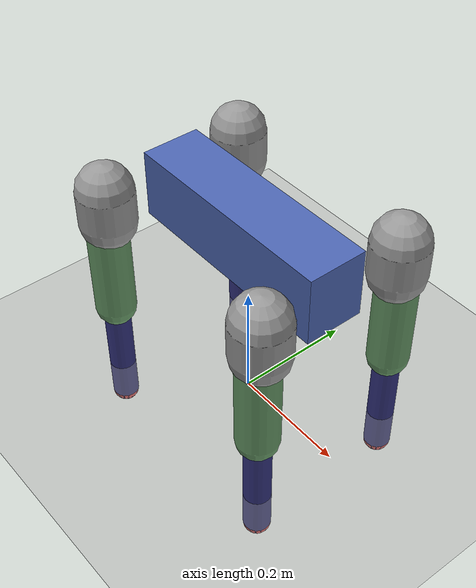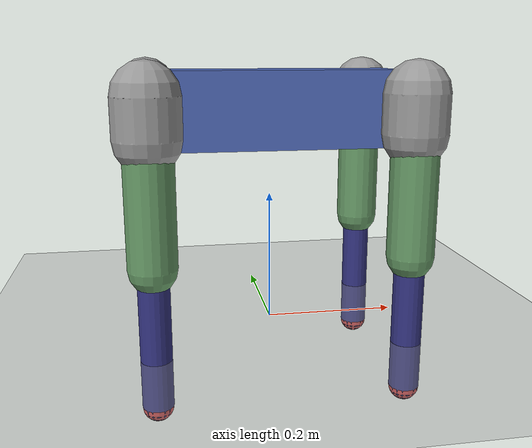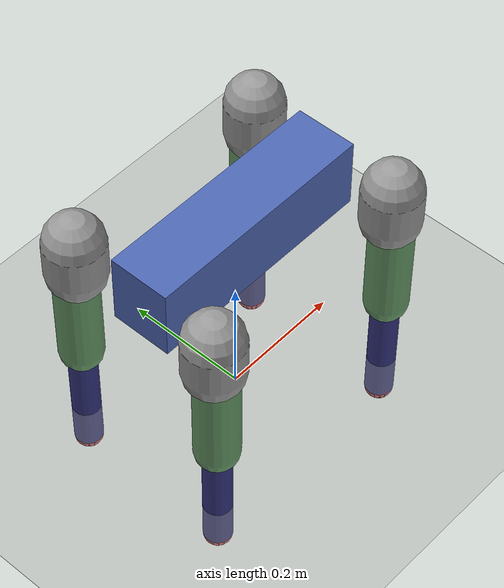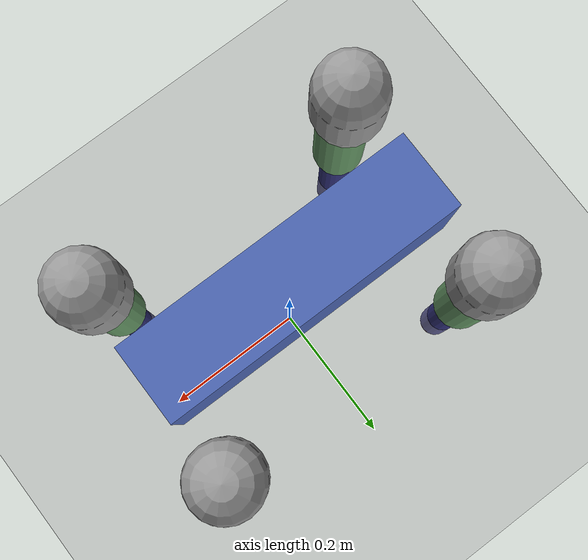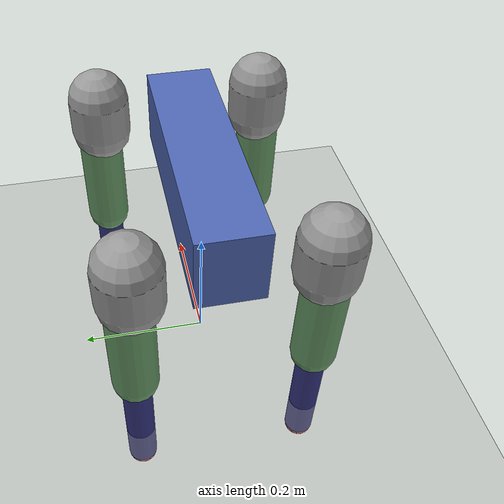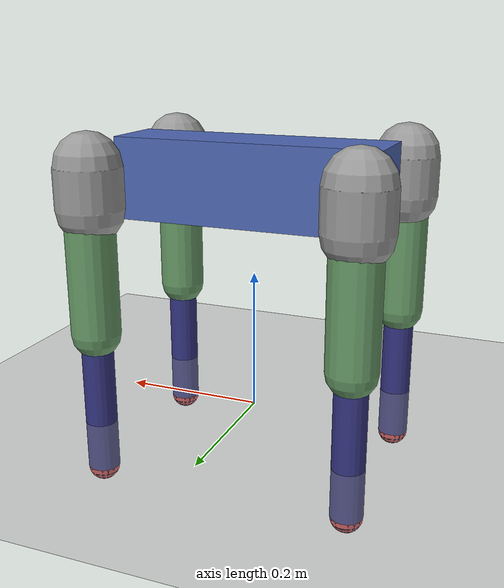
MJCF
<mujoco model="quadruped">

  <!-- Global simulation options -->
  <option timestep="0.002" gravity="0 0 -9.81" iterations="50" solver="Newton"/>

  <!-- Compiler settings -->
  <compiler angle="radian" autolimits="true"/>

  <!-- Default geometry and joint properties -->
  <default>
    <joint damping="0.01" armature="0.01" limited="true"/>
    <geom condim="3" friction="0.8 0.02 0.01" rgba="0.6 0.6 0.6 1"/>
    <motor ctrllimited="true" ctrlrange="-33.5 33.5" gear="1"/>
  </default>

  <!-- Ground plane + sky -->
  <asset>
    <texture type="skybox" builtin="gradient" rgb1="0.3 0.5 0.8" rgb2="0 0 0" width="512" height="512"/>
    <texture name="grid" type="2d" builtin="checker" rgb1=".1 .2 .3" rgb2=".2 .3 .4" width="300" height="300" mark="none"/>
    <material name="grid" texture="grid" texrepeat="1 1" texuniform="true" reflectance=".2"/>
  </asset>

  <!-- World -->
  <worldbody>
    <light directional="true" diffuse=".8 .8 .8" specular=".2 .2 .2" pos="0 0 4" dir="0 0 -1"/>
    <geom name="floor" type="plane" size="10 10 0.1" pos="0 0 0" material="grid"/>

    <!-- BASE BODY (trunk)                                                   -->
    <body name="base" pos="0 0 0.33">

      <!-- 6-DOF freejoint lets the body float freely (training in free space) -->
      <freejoint name="root"/>

      <!-- Trunk mass ~4.71 kg, dimensions approximate A1 -->
      <inertial pos="0 0 0" mass="4.71"
                diaginertia="0.0158533 0.0377999 0.0456542"/>
      <geom name="trunk" type="box" size="0.1875 0.049 0.057" rgba="0.3 0.4 0.7 1"/>

      <!-- IMU site (where we read angular velocity and orientation) -->
      <site name="imu" pos="0 0 0"/>

      <!-- FRONT RIGHT LEG (FR)                                           -->
      <body name="FR_hip" pos="0.1805 -0.047 0">
        <joint name="FR_hip_joint" type="hinge" axis="1 0 0" range="-0.916 0.916"/>
        <inertial pos="0 0 0" mass="0.696" diaginertia="0.000871 0.00173 0.00173"/>
        <geom type="capsule" size="0.046 0.028" pos="0 -0.08 0" quat="1 0 0 0"/>

        <body name="FR_thigh" pos="0 -0.0838 0">
          <joint name="FR_thigh_joint" type="hinge" axis="0 1 0" range="-1.745 4.189"/>
          <inertial pos="0 0 -0.1" mass="1.013" diaginertia="0.00550 0.00550 0.000589"/>
          <geom type="capsule" size="0.034 0.1" pos="0 0 -0.1" quat="1 0 0 0" rgba="0.4 0.6 0.4 1"/>

          <body name="FR_calf" pos="0 0 -0.2">
            <joint name="FR_calf_joint" type="hinge" axis="0 1 0" range="-2.775 -0.646"/>
            <inertial pos="0 0 -0.1" mass="0.226" diaginertia="0.000215 0.000215 0.0000135"/>
            <geom type="capsule" size="0.022 0.1" pos="0 0 -0.1" rgba="0.2 0.2 0.5 1"/>
            <!-- Foot contact sphere -->
            <geom name="FR_foot" type="sphere" size="0.022" pos="0 0 -0.2"
                  rgba="0.9 0.3 0.3 1" condim="6"/>
          </body>
        </body>
      </body>

      <!-- FRONT LEFT LEG (FL)                                            -->
      <body name="FL_hip" pos="0.1805 0.047 0">
        <joint name="FL_hip_joint" type="hinge" axis="1 0 0" range="-0.916 0.916"/>
        <inertial pos="0 0 0" mass="0.696" diaginertia="0.000871 0.00173 0.00173"/>
        <geom type="capsule" size="0.046 0.028" pos="0 0.08 0" quat="1 0 0 0"/>

        <body name="FL_thigh" pos="0 0.0838 0">
          <joint name="FL_thigh_joint" type="hinge" axis="0 1 0" range="-1.745 4.189"/>
          <inertial pos="0 0 -0.1" mass="1.013" diaginertia="0.00550 0.00550 0.000589"/>
          <geom type="capsule" size="0.034 0.1" pos="0 0 -0.1" quat="1 0 0 0" rgba="0.4 0.6 0.4 1"/>

          <body name="FL_calf" pos="0 0 -0.2">
            <joint name="FL_calf_joint" type="hinge" axis="0 1 0" range="-2.775 -0.646"/>
            <inertial pos="0 0 -0.1" mass="0.226" diaginertia="0.000215 0.000215 0.0000135"/>
            <geom type="capsule" size="0.022 0.1" pos="0 0 -0.1" rgba="0.2 0.2 0.5 1"/>
            <geom name="FL_foot" type="sphere" size="0.022" pos="0 0 -0.2"
                  rgba="0.9 0.3 0.3 1" condim="6"/>
          </body>
        </body>
      </body>

      <!-- REAR RIGHT LEG (RR)                                            -->
      <body name="RR_hip" pos="-0.1805 -0.047 0">
        <joint name="RR_hip_joint" type="hinge" axis="1 0 0" range="-0.916 0.916"/>
        <inertial pos="0 0 0" mass="0.696" diaginertia="0.000871 0.00173 0.00173"/>
        <geom type="capsule" size="0.046 0.028" pos="0 -0.08 0" quat="1 0 0 0"/>

        <body name="RR_thigh" pos="0 -0.0838 0">
          <joint name="RR_thigh_joint" type="hinge" axis="0 1 0" range="-1.745 4.189"/>
          <inertial pos="0 0 -0.1" mass="1.013" diaginertia="0.00550 0.00550 0.000589"/>
          <geom type="capsule" size="0.034 0.1" pos="0 0 -0.1" quat="1 0 0 0" rgba="0.4 0.6 0.4 1"/>

          <body name="RR_calf" pos="0 0 -0.2">
            <joint name="RR_calf_joint" type="hinge" axis="0 1 0" range="-2.775 -0.646"/>
            <inertial pos="0 0 -0.1" mass="0.226" diaginertia="0.000215 0.000215 0.0000135"/>
            <geom type="capsule" size="0.022 0.1" pos="0 0 -0.1" rgba="0.2 0.2 0.5 1"/>
            <geom name="RR_foot" type="sphere" size="0.022" pos="0 0 -0.2"
                  rgba="0.9 0.3 0.3 1" condim="6"/>
          </body>
        </body>
      </body>

      <!-- REAR LEFT LEG (RL)                                             -->
      <body name="RL_hip" pos="-0.1805 0.047 0">
        <joint name="RL_hip_joint" type="hinge" axis="1 0 0" range="-0.916 0.916"/>
        <inertial pos="0 0 0" mass="0.696" diaginertia="0.000871 0.00173 0.00173"/>
        <geom type="capsule" size="0.046 0.028" pos="0 0.08 0" quat="1 0 0 0"/>

        <body name="RL_thigh" pos="0 0.0838 0">
          <joint name="RL_thigh_joint" type="hinge" axis="0 1 0" range="-1.745 4.189"/>
          <inertial pos="0 0 -0.1" mass="1.013" diaginertia="0.00550 0.00550 0.000589"/>
          <geom type="capsule" size="0.034 0.1" pos="0 0 -0.1" quat="1 0 0 0" rgba="0.4 0.6 0.4 1"/>

          <body name="RL_calf" pos="0 0 -0.2">
            <joint name="RL_calf_joint" type="hinge" axis="0 1 0" range="-2.775 -0.646"/>
            <inertial pos="0 0 -0.1" mass="0.226" diaginertia="0.000215 0.000215 0.0000135"/>
            <geom type="capsule" size="0.022 0.1" pos="0 0 -0.1" rgba="0.2 0.2 0.5 1"/>
            <geom name="RL_foot" type="sphere" size="0.022" pos="0 0 -0.2"
                  rgba="0.9 0.3 0.3 1" condim="6"/>
          </body>
        </body>
      </body>

    </body> <!-- end base -->
  </worldbody>

  <!-- ACTUATORS — one position/torque actuator per joint                  -->
  <actuator>
    <motor name="FR_hip_motor"   joint="FR_hip_joint"/>
    <motor name="FR_thigh_motor" joint="FR_thigh_joint"/>
    <motor name="FR_calf_motor"  joint="FR_calf_joint"/>
    <motor name="FL_hip_motor"   joint="FL_hip_joint"/>
    <motor name="FL_thigh_motor" joint="FL_thigh_joint"/>
    <motor name="FL_calf_motor"  joint="FL_calf_joint"/>
    <motor name="RR_hip_motor"   joint="RR_hip_joint"/>
    <motor name="RR_thigh_motor" joint="RR_thigh_joint"/>
    <motor name="RR_calf_motor"  joint="RR_calf_joint"/>
    <motor name="RL_hip_motor"   joint="RL_hip_joint"/>
    <motor name="RL_thigh_motor" joint="RL_thigh_joint"/>
    <motor name="RL_calf_motor"  joint="RL_calf_joint"/>
  </actuator>

  <!-- Optional sensors for debugging / logging -->
  <sensor>
    <gyro       name="imu_gyro"  site="imu"/>
    <accelerometer name="imu_acc" site="imu"/>
    <framequat  name="imu_quat"  objtype="site" objname="imu"/>
  </sensor>

</mujoco>
